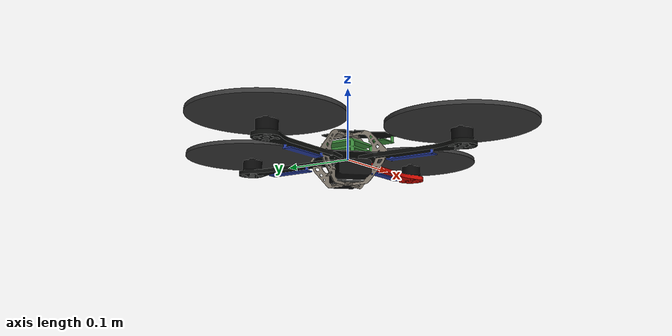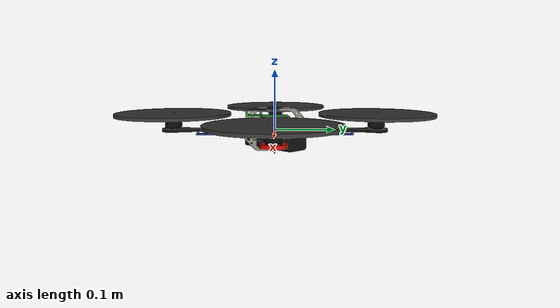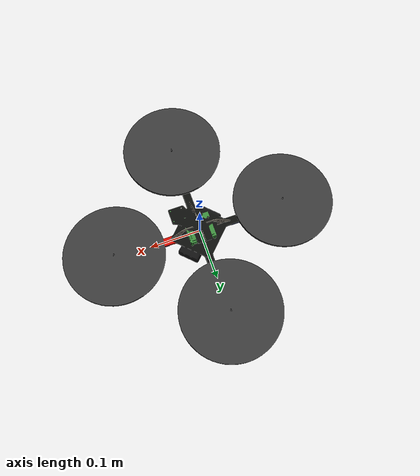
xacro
<?xml version="1.0"?>

<robot name="quadrotor" xmlns:xacro="http://ros.org/wiki/xacro">
  <xacro:property name="pi" value="3.1415926535897931" />
  <xacro:property name="mass" value="0.5" />
  <xacro:property name="ixx" value="0.00264" />
  <xacro:property name="iyy" value="0.00264" />
  <xacro:property name="izz" value="0.00496" />

  <!-- Main quadrotor link -->
  <xacro:macro name="quadrotor_base_macro">
    <link name="base_link">
      <inertial>
        <!--mass value="1.477" /-->
        <mass value="${mass}"/>
        <origin xyz="0 0 0" />
        <inertia ixx="${ixx}" ixy="0.0" ixz="0.0" iyy="${iyy}" iyz="0.0" izz="${izz}" />
      </inertial>

      <visual>
        <origin xyz="0 0 0" rpy="0 0 0.0"/>
        <geometry>
          <mesh filename="package://mrsl_models/models/hummingbird/hummingbird.dae"/>
        </geometry>
      </visual>

      <collision>
        <origin xyz="0 0 0" rpy="0 0 0.7854" />
        <geometry>
          <!--mesh filename="package://mrsl_models/models/hummingbird/hummingbird.stl"/-->
          <box size="0.3 0.3 0.2" />
        </geometry>
      </collision>
    </link>

    <!-- Plugins -->
    <gazebo>

      <!-- Quad Dynamics Plugin -->
      <plugin name="test" filename="libmrsl_quadrotor_propulsion.so">
        <command_topic>so3_cmd</command_topic>
      </plugin>

      <!-- Quad Ground Truth Plugin -->
      <plugin name="quadrotor_groundtruth_sim" filename="libgazebo_ros_p3d.so">
        <updateRate>100.0</updateRate>
        <bodyName>base_link</bodyName>
        <topicName>ground_truth/odom</topicName>
        <gaussianNoise>0.0</gaussianNoise>
        <frameName>world</frameName>
      </plugin>

      <!-- Quad Imu Plugin -->
      <plugin name="quadrotor_imu_sim" filename="libhector_gazebo_ros_imu.so">
        <updateRate>100.0</updateRate>
        <bodyName>base_link</bodyName>
        <topicName>raw_imu</topicName>
        <rpyOffsets>0 0 0</rpyOffsets> <!-- deprecated -->
        <gaussianNoise>0</gaussianNoise>  <!-- deprecated -->
        <accelDrift>0.5 0.5 0.5</accelDrift>
        <accelGaussianNoise>0.35 0.35 0.3</accelGaussianNoise>
        <rateDrift>0.1 0.1 0.1</rateDrift>
        <rateGaussianNoise>0.05 0.05 0.015</rateGaussianNoise>
        <headingDrift>0.1</headingDrift>
        <headingGaussianNoise>0.05</headingGaussianNoise>
      </plugin>
    </gazebo>

  </xacro:macro>

  <xacro:quadrotor_base_macro/>
</robot>
